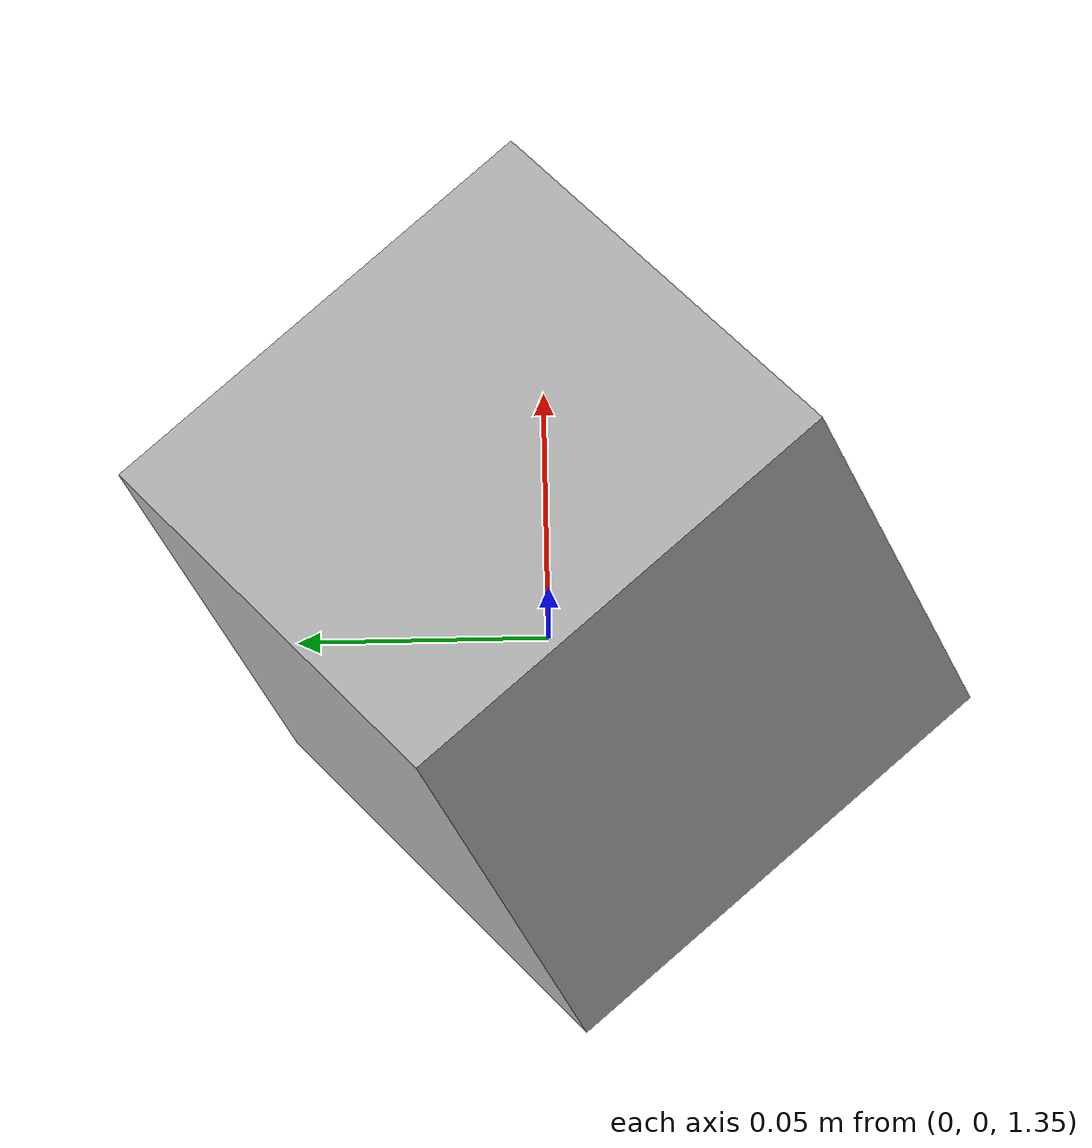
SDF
<?xml version="1.0" ?>
<sdf version="1.5">
  <model name="camera">
    <joint name="fix_camera" type="fixed">
      <parent>world</parent>
      <child>camera::link</child>
       <axis>
        <limit>
          <lower>0</lower>
          <upper>0</upper>
        </limit>
        <xyz>0 0 1.4</xyz>
        </axis>
    </joint>
    <link name="link">
      <pose>0 0 1.4 0 0.5 0.7</pose>
      <inertial>
        <mass>0.1</mass>
        <inertia>
          <ixx>0.000166667</ixx>
          <iyy>0.000166667</iyy>
          <izz>0.000166667</izz>
        </inertia>
      </inertial>
      <collision name="collision">
        <geometry>
          <box>
            <size>0.1 0.1 0.1</size>
          </box>
        </geometry>
      </collision>
      <visual name="visual">
        <geometry>
          <box>
            <size>0.1 0.1 0.1</size>
          </box>
        </geometry>
      </visual>
      <sensor name="camera" type="camera">
        <camera>
          <horizontal_fov>0.88</horizontal_fov>
          <image>
            <width>160</width>
            <height>160</height>
            <format>R8G8B8</format>
          </image>
          <clip>
            <near>0.1</near>
            <far>300</far>
          </clip>
        </camera>
        <visualize>false</visualize>

        <plugin name="camera_controller" filename="libgazebo_ros_camera.so">
            <alwaysOn>true</alwaysOn>
            <updateRate>25.0</updateRate>
            <cameraName>ur10/camera</cameraName>
            <imageTopicName>image_raw</imageTopicName>
            <cameraInfoTopicName>camera_info</cameraInfoTopicName>
            <frameName>camera_link</frameName>
            <hackBaseline>0.07</hackBaseline>
            <distortionK1>0.0</distortionK1>
            <distortionK2>0.0</distortionK2>
            <distortionK3>0.0</distortionK3>
            <distortionT1>0.0</distortionT1>
            <distortionT2>0.0</distortionT2>
        </plugin>
      </sensor>
    </link>
  </model>
</sdf>
